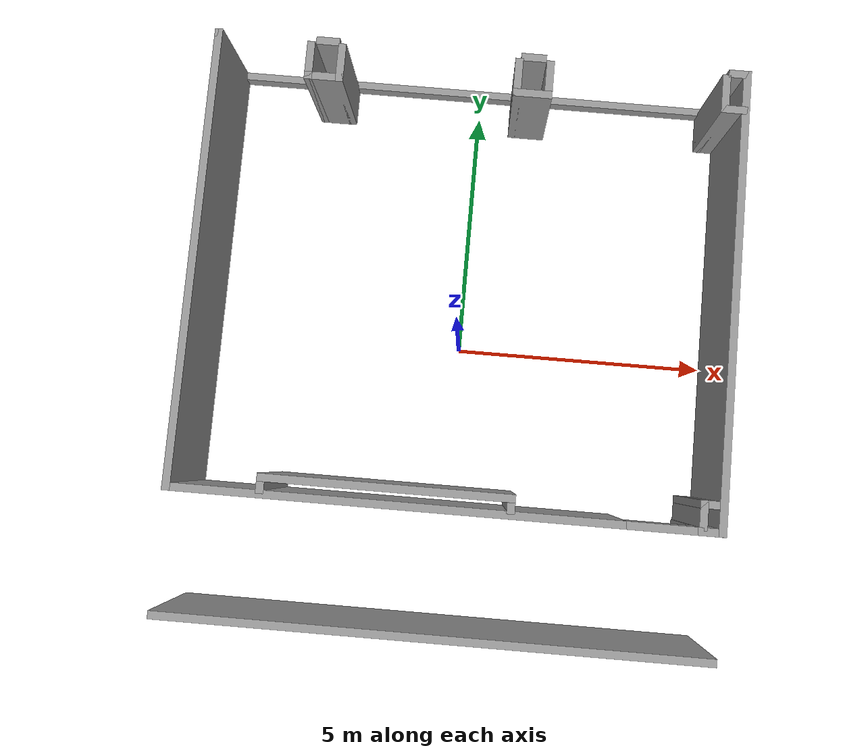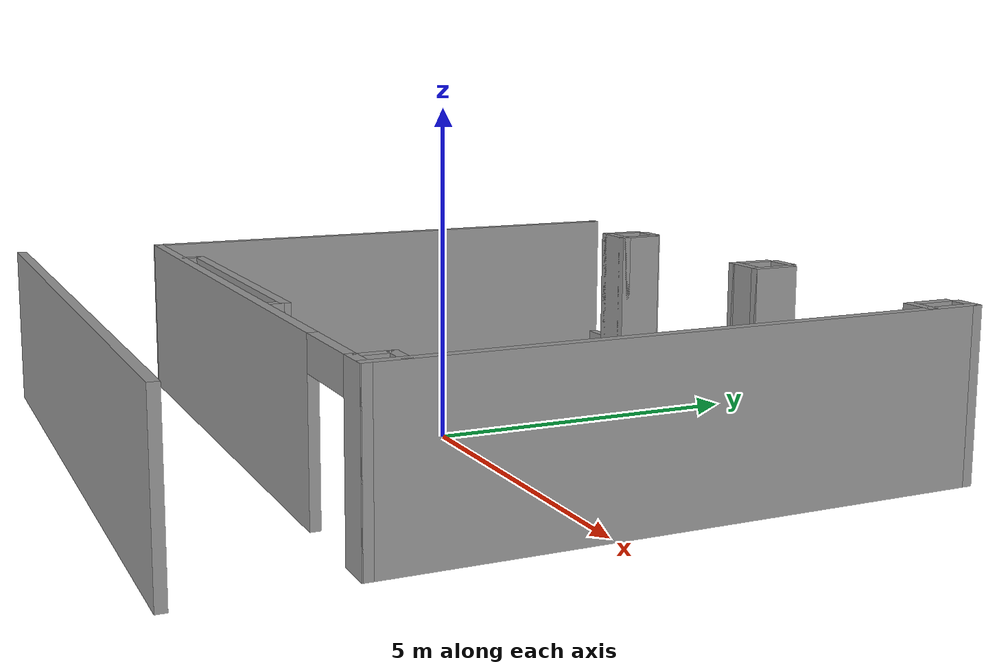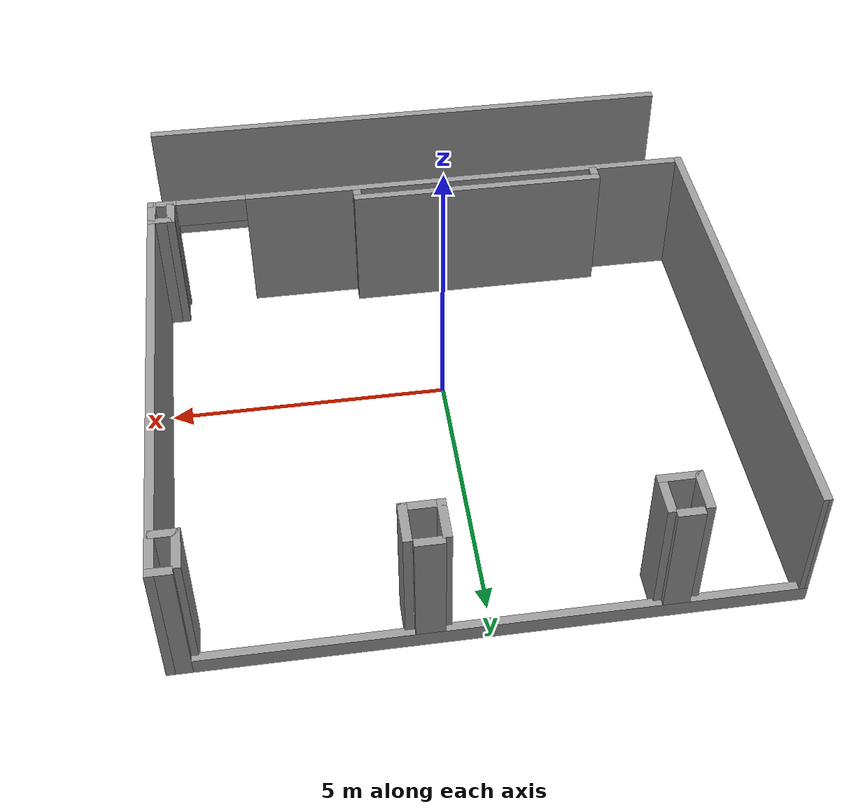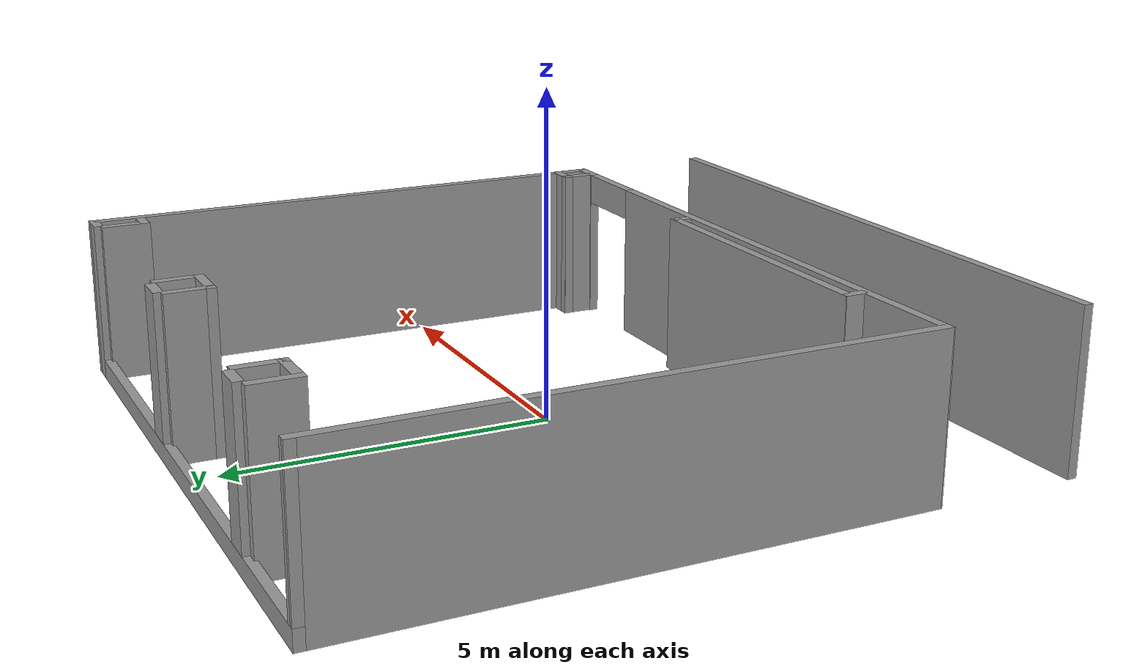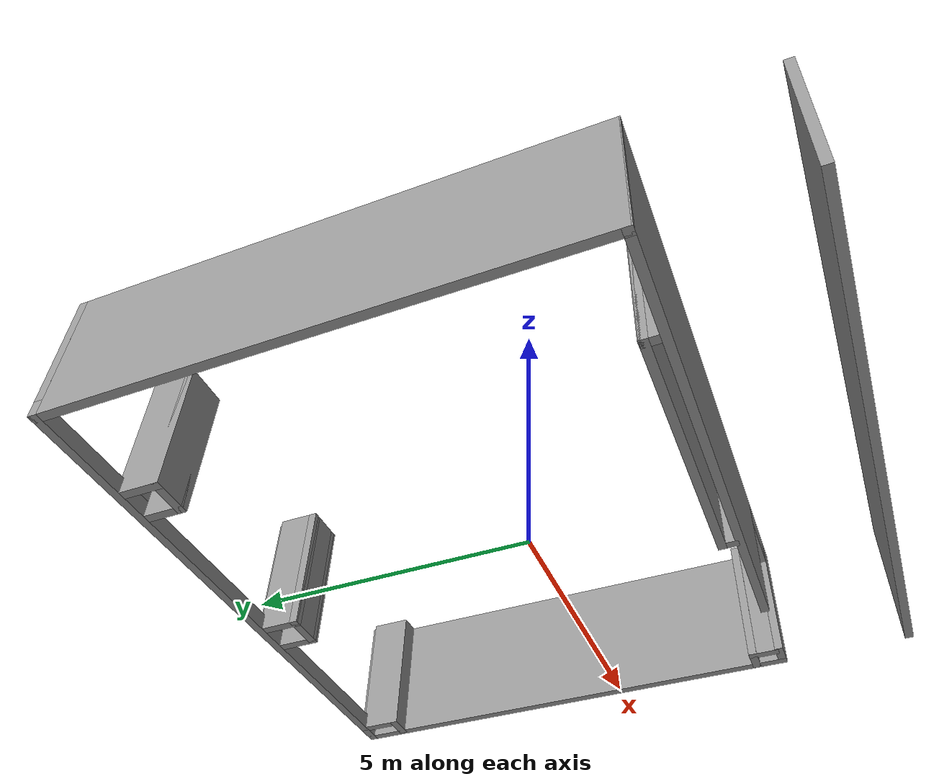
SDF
<?xml version='1.0'?>
<sdf version='1.7'>
  <model name='labmap'>
    <link name='Wall_21'>
      <pose>-5.08606 1.15108 0 0 0 -1.5708</pose>
      <self_collide>0</self_collide>
      <enable_wind>0</enable_wind>
      <kinematic>0</kinematic>
      <visual name='Wall_21_Visual'>
        <pose>0 0 1.25 0 -0 0</pose>
        <geometry>
          <box>
            <size>8.81401 0.15 2.5</size>
          </box>
        </geometry>
        <material>
          <script>
            <uri>file://media/materials/scripts/gazebo.material</uri>
            <name>Gazebo/Grey</name>
          </script>
          <ambient>1 1 1 1</ambient>
          <shader type='pixel'/>
        </material>
        <meta>
          <layer>0</layer>
        </meta>
        <transparency>0</transparency>
        <cast_shadows>1</cast_shadows>
      </visual>
      <collision name='Wall_21_Collision'>
        <laser_retro>0</laser_retro>
        <max_contacts>10</max_contacts>
        <pose>0 0 1.25 0 -0 0</pose>
        <geometry>
          <box>
            <size>8.81401 0.15 2.5</size>
          </box>
        </geometry>
        <surface>
          <friction>
            <ode>
              <mu>1</mu>
              <mu2>1</mu2>
              <fdir1>0 0 0</fdir1>
              <slip1>0</slip1>
              <slip2>0</slip2>
            </ode>
            <torsional>
              <coefficient>1</coefficient>
              <patch_radius>0</patch_radius>
              <surface_radius>0</surface_radius>
              <use_patch_radius>1</use_patch_radius>
              <ode>
                <slip>0</slip>
              </ode>
            </torsional>
          </friction>
          <bounce>
            <restitution_coefficient>0</restitution_coefficient>
            <threshold>1e+06</threshold>
          </bounce>
          <contact>
            <collide_without_contact>0</collide_without_contact>
            <collide_without_contact_bitmask>1</collide_without_contact_bitmask>
            <collide_bitmask>1</collide_bitmask>
            <ode>
              <soft_cfm>0</soft_cfm>
              <soft_erp>0.2</soft_erp>
              <kp>1e+13</kp>
              <kd>1</kd>
              <max_vel>0.01</max_vel>
              <min_depth>0</min_depth>
            </ode>
            <bullet>
              <split_impulse>1</split_impulse>
              <split_impulse_penetration_threshold>-0.01</split_impulse_penetration_threshold>
              <soft_cfm>0</soft_cfm>
              <soft_erp>0.2</soft_erp>
              <kp>1e+13</kp>
              <kd>1</kd>
            </bullet>
          </contact>
        </surface>
      </collision>
    </link>
    <link name='Wall_22'>
      <pose>5.8e-05 -3.182 0 0 0 -0.000211</pose>
      <self_collide>0</self_collide>
      <enable_wind>0</enable_wind>
      <kinematic>0</kinematic>
      <visual name='Wall_22_Visual_0'>
        <pose>-0.914908 0 1.25 0 -0 0</pose>
        <geometry>
          <box>
            <size>8.49243 0.15 2.5</size>
          </box>
        </geometry>
        <material>
          <script>
            <uri>file://media/materials/scripts/gazebo.material</uri>
            <name>Gazebo/Grey</name>
          </script>
          <ambient>1 1 1 1</ambient>
          <shader type='pixel'/>
        </material>
        <meta>
          <layer>0</layer>
        </meta>
        <transparency>0</transparency>
        <cast_shadows>1</cast_shadows>
      </visual>
      <visual name='Wall_22_Visual_1'>
        <pose>4.89621 0 1.25 0 -0 0</pose>
        <geometry>
          <box>
            <size>0.529817 0.15 2.5</size>
          </box>
        </geometry>
        <material>
          <script>
            <uri>file://media/materials/scripts/gazebo.material</uri>
            <name>Gazebo/Grey</name>
          </script>
          <ambient>1 1 1 1</ambient>
          <shader type='pixel'/>
        </material>
        <meta>
          <layer>0</layer>
        </meta>
        <transparency>0</transparency>
        <cast_shadows>1</cast_shadows>
      </visual>
      <visual name='Wall_22_Visual_2'>
        <pose>3.9813 0 2.25 0 -0 0</pose>
        <geometry>
          <box>
            <size>1.3 0.15 0.5</size>
          </box>
        </geometry>
        <material>
          <script>
            <uri>file://media/materials/scripts/gazebo.material</uri>
            <name>Gazebo/Grey</name>
          </script>
          <ambient>1 1 1 1</ambient>
          <shader type='pixel'/>
        </material>
        <meta>
          <layer>0</layer>
        </meta>
        <transparency>0</transparency>
        <cast_shadows>1</cast_shadows>
      </visual>
      <collision name='Wall_22_Collision_0'>
        <laser_retro>0</laser_retro>
        <max_contacts>10</max_contacts>
        <pose>-0.914908 0 1.25 0 -0 0</pose>
        <geometry>
          <box>
            <size>8.49243 0.15 2.5</size>
          </box>
        </geometry>
        <surface>
          <friction>
            <ode>
              <mu>1</mu>
              <mu2>1</mu2>
              <fdir1>0 0 0</fdir1>
              <slip1>0</slip1>
              <slip2>0</slip2>
            </ode>
            <torsional>
              <coefficient>1</coefficient>
              <patch_radius>0</patch_radius>
              <surface_radius>0</surface_radius>
              <use_patch_radius>1</use_patch_radius>
              <ode>
                <slip>0</slip>
              </ode>
            </torsional>
          </friction>
          <bounce>
            <restitution_coefficient>0</restitution_coefficient>
            <threshold>1e+06</threshold>
          </bounce>
          <contact>
            <collide_without_contact>0</collide_without_contact>
            <collide_without_contact_bitmask>1</collide_without_contact_bitmask>
            <collide_bitmask>1</collide_bitmask>
            <ode>
              <soft_cfm>0</soft_cfm>
              <soft_erp>0.2</soft_erp>
              <kp>1e+13</kp>
              <kd>1</kd>
              <max_vel>0.01</max_vel>
              <min_depth>0</min_depth>
            </ode>
            <bullet>
              <split_impulse>1</split_impulse>
              <split_impulse_penetration_threshold>-0.01</split_impulse_penetration_threshold>
              <soft_cfm>0</soft_cfm>
              <soft_erp>0.2</soft_erp>
              <kp>1e+13</kp>
              <kd>1</kd>
            </bullet>
          </contact>
        </surface>
      </collision>
      <collision name='Wall_22_Collision_2'>
        <laser_retro>0</laser_retro>
        <max_contacts>10</max_contacts>
        <pose>3.9813 0 2.25 0 -0 0</pose>
        <geometry>
          <box>
            <size>1.3 0.15 0.5</size>
          </box>
        </geometry>
        <surface>
          <friction>
            <ode>
              <mu>1</mu>
              <mu2>1</mu2>
              <fdir1>0 0 0</fdir1>
              <slip1>0</slip1>
              <slip2>0</slip2>
            </ode>
            <torsional>
              <coefficient>1</coefficient>
              <patch_radius>0</patch_radius>
              <surface_radius>0</surface_radius>
              <use_patch_radius>1</use_patch_radius>
              <ode>
                <slip>0</slip>
              </ode>
            </torsional>
          </friction>
          <bounce>
            <restitution_coefficient>0</restitution_coefficient>
            <threshold>1e+06</threshold>
          </bounce>
          <contact>
            <collide_without_contact>0</collide_without_contact>
            <collide_without_contact_bitmask>1</collide_without_contact_bitmask>
            <collide_bitmask>1</collide_bitmask>
            <ode>
              <soft_cfm>0</soft_cfm>
              <soft_erp>0.2</soft_erp>
              <kp>1e+13</kp>
              <kd>1</kd>
              <max_vel>0.01</max_vel>
              <min_depth>0</min_depth>
            </ode>
            <bullet>
              <split_impulse>1</split_impulse>
              <split_impulse_penetration_threshold>-0.01</split_impulse_penetration_threshold>
              <soft_cfm>0</soft_cfm>
              <soft_erp>0.2</soft_erp>
              <kp>1e+13</kp>
              <kd>1</kd>
            </bullet>
          </contact>
        </surface>
      </collision>
      <collision name='Wall_22_Collision_1'>
        <laser_retro>0</laser_retro>
        <max_contacts>10</max_contacts>
        <pose>4.89621 0 1.25 0 -0 0</pose>
        <geometry>
          <box>
            <size>0.529817 0.15 2.5</size>
          </box>
        </geometry>
        <surface>
          <friction>
            <ode>
              <mu>1</mu>
              <mu2>1</mu2>
              <fdir1>0 0 0</fdir1>
              <slip1>0</slip1>
              <slip2>0</slip2>
            </ode>
            <torsional>
              <coefficient>1</coefficient>
              <patch_radius>0</patch_radius>
              <surface_radius>0</surface_radius>
              <use_patch_radius>1</use_patch_radius>
              <ode>
                <slip>0</slip>
              </ode>
            </torsional>
          </friction>
          <bounce>
            <restitution_coefficient>0</restitution_coefficient>
            <threshold>1e+06</threshold>
          </bounce>
          <contact>
            <collide_without_contact>0</collide_without_contact>
            <collide_without_contact_bitmask>1</collide_without_contact_bitmask>
            <collide_bitmask>1</collide_bitmask>
            <ode>
              <soft_cfm>0</soft_cfm>
              <soft_erp>0.2</soft_erp>
              <kp>1e+13</kp>
              <kd>1</kd>
              <max_vel>0.01</max_vel>
              <min_depth>0</min_depth>
            </ode>
            <bullet>
              <split_impulse>1</split_impulse>
              <split_impulse_penetration_threshold>-0.01</split_impulse_penetration_threshold>
              <soft_cfm>0</soft_cfm>
              <soft_erp>0.2</soft_erp>
              <kp>1e+13</kp>
              <kd>1</kd>
            </bullet>
          </contact>
        </surface>
      </collision>
    </link>
    <link name='Wall_23'>
      <pose>5.08606 1.15108 0 0 -0 1.57082</pose>
      <self_collide>0</self_collide>
      <enable_wind>0</enable_wind>
      <kinematic>0</kinematic>
      <visual name='Wall_23_Visual'>
        <pose>0 0 1.25 0 -0 0</pose>
        <geometry>
          <box>
            <size>8.814 0.15 2.5</size>
          </box>
        </geometry>
        <material>
          <script>
            <uri>file://media/materials/scripts/gazebo.material</uri>
            <name>Gazebo/Grey</name>
          </script>
          <ambient>1 1 1 1</ambient>
          <shader type='pixel'/>
        </material>
        <meta>
          <layer>0</layer>
        </meta>
        <transparency>0</transparency>
        <cast_shadows>1</cast_shadows>
      </visual>
      <collision name='Wall_23_Collision'>
        <laser_retro>0</laser_retro>
        <max_contacts>10</max_contacts>
        <pose>0 0 1.25 0 -0 0</pose>
        <geometry>
          <box>
            <size>8.814 0.15 2.5</size>
          </box>
        </geometry>
        <surface>
          <friction>
            <ode>
              <mu>1</mu>
              <mu2>1</mu2>
              <fdir1>0 0 0</fdir1>
              <slip1>0</slip1>
              <slip2>0</slip2>
            </ode>
            <torsional>
              <coefficient>1</coefficient>
              <patch_radius>0</patch_radius>
              <surface_radius>0</surface_radius>
              <use_patch_radius>1</use_patch_radius>
              <ode>
                <slip>0</slip>
              </ode>
            </torsional>
          </friction>
          <bounce>
            <restitution_coefficient>0</restitution_coefficient>
            <threshold>1e+06</threshold>
          </bounce>
          <contact>
            <collide_without_contact>0</collide_without_contact>
            <collide_without_contact_bitmask>1</collide_without_contact_bitmask>
            <collide_bitmask>1</collide_bitmask>
            <ode>
              <soft_cfm>0</soft_cfm>
              <soft_erp>0.2</soft_erp>
              <kp>1e+13</kp>
              <kd>1</kd>
              <max_vel>0.01</max_vel>
              <min_depth>0</min_depth>
            </ode>
            <bullet>
              <split_impulse>1</split_impulse>
              <split_impulse_penetration_threshold>-0.01</split_impulse_penetration_threshold>
              <soft_cfm>0</soft_cfm>
              <soft_erp>0.2</soft_erp>
              <kp>1e+13</kp>
              <kd>1</kd>
            </bullet>
          </contact>
        </surface>
      </collision>
    </link>
    <link name='Wall_24'>
      <pose>-6.3e-05 5.48308 0 0 -0 3.14159</pose>
      <self_collide>0</self_collide>
      <enable_wind>0</enable_wind>
      <kinematic>0</kinematic>
      <visual name='Wall_24_Visual_0'>
        <pose>-4.94843 0 1.25 0 -0 0</pose>
        <geometry>
          <box>
            <size>0.425403 0.15 2.5</size>
          </box>
        </geometry>
        <material>
          <script>
            <uri>file://media/materials/scripts/gazebo.material</uri>
            <name>Gazebo/Grey</name>
          </script>
          <ambient>1 1 1 1</ambient>
          <shader type='pixel'/>
        </material>
        <meta>
          <layer>0</layer>
        </meta>
        <transparency>0</transparency>
        <cast_shadows>1</cast_shadows>
      </visual>
      <visual name='Wall_24_Visual_1'>
        <pose>0.212701 0 0.15 0 -0 0</pose>
        <geometry>
          <box>
            <size>9.89686 0.15 0.3</size>
          </box>
        </geometry>
        <material>
          <script>
            <uri>file://media/materials/scripts/gazebo.material</uri>
            <name>Gazebo/Grey</name>
          </script>
          <ambient>1 1 1 1</ambient>
          <shader type='pixel'/>
        </material>
        <meta>
          <layer>0</layer>
        </meta>
        <transparency>0</transparency>
        <cast_shadows>1</cast_shadows>
      </visual>
      <visual name='Wall_24_Visual_2'>
        <pose>-0.993384 0 1.4 0 -0 0</pose>
        <geometry>
          <box>
            <size>0.484693 0.15 2.2</size>
          </box>
        </geometry>
        <material>
          <script>
            <uri>file://media/materials/scripts/gazebo.material</uri>
            <name>Gazebo/Grey</name>
          </script>
          <ambient>1 1 1 1</ambient>
          <shader type='pixel'/>
        </material>
        <meta>
          <layer>0</layer>
        </meta>
        <transparency>0</transparency>
        <cast_shadows>1</cast_shadows>
      </visual>
      <visual name='Wall_24_Visual_3'>
        <pose>2.97383 0 1.4 0 -0 0</pose>
        <geometry>
          <box>
            <size>0.449737 0.15 2.2</size>
          </box>
        </geometry>
        <material>
          <script>
            <uri>file://media/materials/scripts/gazebo.material</uri>
            <name>Gazebo/Grey</name>
          </script>
          <ambient>1 1 1 1</ambient>
          <shader type='pixel'/>
        </material>
        <meta>
          <layer>0</layer>
        </meta>
        <transparency>0</transparency>
        <cast_shadows>1</cast_shadows>
      </visual>
      <visual name='Wall_24_Visual_4'>
        <pose>5.12992 0 1.4 0 -0 0</pose>
        <geometry>
          <box>
            <size>0.062433 0.15 2.2</size>
          </box>
        </geometry>
        <material>
          <script>
            <uri>file://media/materials/scripts/gazebo.material</uri>
            <name>Gazebo/Grey</name>
          </script>
          <ambient>1 1 1 1</ambient>
          <shader type='pixel'/>
        </material>
        <meta>
          <layer>0</layer>
        </meta>
        <transparency>0</transparency>
        <cast_shadows>1</cast_shadows>
      </visual>
      <collision name='Wall_24_Collision_0'>
        <laser_retro>0</laser_retro>
        <max_contacts>10</max_contacts>
        <pose>-4.94843 0 1.25 0 -0 0</pose>
        <geometry>
          <box>
            <size>0.425403 0.15 2.5</size>
          </box>
        </geometry>
        <surface>
          <friction>
            <ode>
              <mu>1</mu>
              <mu2>1</mu2>
              <fdir1>0 0 0</fdir1>
              <slip1>0</slip1>
              <slip2>0</slip2>
            </ode>
            <torsional>
              <coefficient>1</coefficient>
              <patch_radius>0</patch_radius>
              <surface_radius>0</surface_radius>
              <use_patch_radius>1</use_patch_radius>
              <ode>
                <slip>0</slip>
              </ode>
            </torsional>
          </friction>
          <bounce>
            <restitution_coefficient>0</restitution_coefficient>
            <threshold>1e+06</threshold>
          </bounce>
          <contact>
            <collide_without_contact>0</collide_without_contact>
            <collide_without_contact_bitmask>1</collide_without_contact_bitmask>
            <collide_bitmask>1</collide_bitmask>
            <ode>
              <soft_cfm>0</soft_cfm>
              <soft_erp>0.2</soft_erp>
              <kp>1e+13</kp>
              <kd>1</kd>
              <max_vel>0.01</max_vel>
              <min_depth>0</min_depth>
            </ode>
            <bullet>
              <split_impulse>1</split_impulse>
              <split_impulse_penetration_threshold>-0.01</split_impulse_penetration_threshold>
              <soft_cfm>0</soft_cfm>
              <soft_erp>0.2</soft_erp>
              <kp>1e+13</kp>
              <kd>1</kd>
            </bullet>
          </contact>
        </surface>
      </collision>
      <collision name='Wall_24_Collision_1'>
        <laser_retro>0</laser_retro>
        <max_contacts>10</max_contacts>
        <pose>0.212701 0 0.15 0 -0 0</pose>
        <geometry>
          <box>
            <size>9.89686 0.15 0.3</size>
          </box>
        </geometry>
        <surface>
          <friction>
            <ode>
              <mu>1</mu>
              <mu2>1</mu2>
              <fdir1>0 0 0</fdir1>
              <slip1>0</slip1>
              <slip2>0</slip2>
            </ode>
            <torsional>
              <coefficient>1</coefficient>
              <patch_radius>0</patch_radius>
              <surface_radius>0</surface_radius>
              <use_patch_radius>1</use_patch_radius>
              <ode>
                <slip>0</slip>
              </ode>
            </torsional>
          </friction>
          <bounce>
            <restitution_coefficient>0</restitution_coefficient>
            <threshold>1e+06</threshold>
          </bounce>
          <contact>
            <collide_without_contact>0</collide_without_contact>
            <collide_without_contact_bitmask>1</collide_without_contact_bitmask>
            <collide_bitmask>1</collide_bitmask>
            <ode>
              <soft_cfm>0</soft_cfm>
              <soft_erp>0.2</soft_erp>
              <kp>1e+13</kp>
              <kd>1</kd>
              <max_vel>0.01</max_vel>
              <min_depth>0</min_depth>
            </ode>
            <bullet>
              <split_impulse>1</split_impulse>
              <split_impulse_penetration_threshold>-0.01</split_impulse_penetration_threshold>
              <soft_cfm>0</soft_cfm>
              <soft_erp>0.2</soft_erp>
              <kp>1e+13</kp>
              <kd>1</kd>
            </bullet>
          </contact>
        </surface>
      </collision>
      <collision name='Wall_24_Collision_2'>
        <laser_retro>0</laser_retro>
        <max_contacts>10</max_contacts>
        <pose>-0.993384 0 1.4 0 -0 0</pose>
        <geometry>
          <box>
            <size>0.484693 0.15 2.2</size>
          </box>
        </geometry>
        <surface>
          <friction>
            <ode>
              <mu>1</mu>
              <mu2>1</mu2>
              <fdir1>0 0 0</fdir1>
              <slip1>0</slip1>
              <slip2>0</slip2>
            </ode>
            <torsional>
              <coefficient>1</coefficient>
              <patch_radius>0</patch_radius>
              <surface_radius>0</surface_radius>
              <use_patch_radius>1</use_patch_radius>
              <ode>
                <slip>0</slip>
              </ode>
            </torsional>
          </friction>
          <bounce>
            <restitution_coefficient>0</restitution_coefficient>
            <threshold>1e+06</threshold>
          </bounce>
          <contact>
            <collide_without_contact>0</collide_without_contact>
            <collide_without_contact_bitmask>1</collide_without_contact_bitmask>
            <collide_bitmask>1</collide_bitmask>
            <ode>
              <soft_cfm>0</soft_cfm>
              <soft_erp>0.2</soft_erp>
              <kp>1e+13</kp>
              <kd>1</kd>
              <max_vel>0.01</max_vel>
              <min_depth>0</min_depth>
            </ode>
            <bullet>
              <split_impulse>1</split_impulse>
              <split_impulse_penetration_threshold>-0.01</split_impulse_penetration_threshold>
              <soft_cfm>0</soft_cfm>
              <soft_erp>0.2</soft_erp>
              <kp>1e+13</kp>
              <kd>1</kd>
            </bullet>
          </contact>
        </surface>
      </collision>
      <collision name='Wall_24_Collision_3'>
        <laser_retro>0</laser_retro>
        <max_contacts>10</max_contacts>
        <pose>2.97383 0 1.4 0 -0 0</pose>
        <geometry>
          <box>
            <size>0.449737 0.15 2.2</size>
          </box>
        </geometry>
        <surface>
          <friction>
            <ode>
              <mu>1</mu>
              <mu2>1</mu2>
              <fdir1>0 0 0</fdir1>
              <slip1>0</slip1>
              <slip2>0</slip2>
            </ode>
            <torsional>
              <coefficient>1</coefficient>
              <patch_radius>0</patch_radius>
              <surface_radius>0</surface_radius>
              <use_patch_radius>1</use_patch_radius>
              <ode>
                <slip>0</slip>
              </ode>
            </torsional>
          </friction>
          <bounce>
            <restitution_coefficient>0</restitution_coefficient>
            <threshold>1e+06</threshold>
          </bounce>
          <contact>
            <collide_without_contact>0</collide_without_contact>
            <collide_without_contact_bitmask>1</collide_without_contact_bitmask>
            <collide_bitmask>1</collide_bitmask>
            <ode>
              <soft_cfm>0</soft_cfm>
              <soft_erp>0.2</soft_erp>
              <kp>1e+13</kp>
              <kd>1</kd>
              <max_vel>0.01</max_vel>
              <min_depth>0</min_depth>
            </ode>
            <bullet>
              <split_impulse>1</split_impulse>
              <split_impulse_penetration_threshold>-0.01</split_impulse_penetration_threshold>
              <soft_cfm>0</soft_cfm>
              <soft_erp>0.2</soft_erp>
              <kp>1e+13</kp>
              <kd>1</kd>
            </bullet>
          </contact>
        </surface>
      </collision>
      <collision name='Wall_24_Collision_4'>
        <laser_retro>0</laser_retro>
        <max_contacts>10</max_contacts>
        <pose>5.12992 0 1.4 0 -0 0</pose>
        <geometry>
          <box>
            <size>0.062433 0.15 2.2</size>
          </box>
        </geometry>
        <surface>
          <friction>
            <ode>
              <mu>1</mu>
              <mu2>1</mu2>
              <fdir1>0 0 0</fdir1>
              <slip1>0</slip1>
              <slip2>0</slip2>
            </ode>
            <torsional>
              <coefficient>1</coefficient>
              <patch_radius>0</patch_radius>
              <surface_radius>0</surface_radius>
              <use_patch_radius>1</use_patch_radius>
              <ode>
                <slip>0</slip>
              </ode>
            </torsional>
          </friction>
          <bounce>
            <restitution_coefficient>0</restitution_coefficient>
            <threshold>1e+06</threshold>
          </bounce>
          <contact>
            <collide_without_contact>0</collide_without_contact>
            <collide_without_contact_bitmask>1</collide_without_contact_bitmask>
            <collide_bitmask>1</collide_bitmask>
            <ode>
              <soft_cfm>0</soft_cfm>
              <soft_erp>0.2</soft_erp>
              <kp>1e+13</kp>
              <kd>1</kd>
              <max_vel>0.01</max_vel>
              <min_depth>0</min_depth>
            </ode>
            <bullet>
              <split_impulse>1</split_impulse>
              <split_impulse_penetration_threshold>-0.01</split_impulse_penetration_threshold>
              <soft_cfm>0</soft_cfm>
              <soft_erp>0.2</soft_erp>
              <kp>1e+13</kp>
              <kd>1</kd>
            </bullet>
          </contact>
        </surface>
      </collision>
    </link>
    <link name='Wall_26'>
      <pose>-0.018431 -5.48308 0 0 -0 0</pose>
      <self_collide>0</self_collide>
      <enable_wind>0</enable_wind>
      <kinematic>0</kinematic>
      <visual name='Wall_26_Visual'>
        <pose>0 0 1.25 0 -0 0</pose>
        <geometry>
          <box>
            <size>10.25 0.15 2.5</size>
          </box>
        </geometry>
        <material>
          <script>
            <uri>file://media/materials/scripts/gazebo.material</uri>
            <name>Gazebo/Grey</name>
          </script>
          <ambient>1 1 1 1</ambient>
          <shader type='pixel'/>
        </material>
        <meta>
          <layer>0</layer>
        </meta>
        <transparency>0</transparency>
        <cast_shadows>1</cast_shadows>
      </visual>
      <collision name='Wall_26_Collision'>
        <laser_retro>0</laser_retro>
        <max_contacts>10</max_contacts>
        <pose>0 0 1.25 0 -0 0</pose>
        <geometry>
          <box>
            <size>10.25 0.15 2.5</size>
          </box>
        </geometry>
        <surface>
          <friction>
            <ode>
              <mu>1</mu>
              <mu2>1</mu2>
              <fdir1>0 0 0</fdir1>
              <slip1>0</slip1>
              <slip2>0</slip2>
            </ode>
            <torsional>
              <coefficient>1</coefficient>
              <patch_radius>0</patch_radius>
              <surface_radius>0</surface_radius>
              <use_patch_radius>1</use_patch_radius>
              <ode>
                <slip>0</slip>
              </ode>
            </torsional>
          </friction>
          <bounce>
            <restitution_coefficient>0</restitution_coefficient>
            <threshold>1e+06</threshold>
          </bounce>
          <contact>
            <collide_without_contact>0</collide_without_contact>
            <collide_without_contact_bitmask>1</collide_without_contact_bitmask>
            <collide_bitmask>1</collide_bitmask>
            <ode>
              <soft_cfm>0</soft_cfm>
              <soft_erp>0.2</soft_erp>
              <kp>1e+13</kp>
              <kd>1</kd>
              <max_vel>0.01</max_vel>
              <min_depth>0</min_depth>
            </ode>
            <bullet>
              <split_impulse>1</split_impulse>
              <split_impulse_penetration_threshold>-0.01</split_impulse_penetration_threshold>
              <soft_cfm>0</soft_cfm>
              <soft_erp>0.2</soft_erp>
              <kp>1e+13</kp>
              <kd>1</kd>
            </bullet>
          </contact>
        </surface>
      </collision>
    </link>
    <link name='Wall_28'>
      <pose>-3.37506 -2.99417 0 0 -0 1.5708</pose>
      <self_collide>0</self_collide>
      <enable_wind>0</enable_wind>
      <kinematic>0</kinematic>
      <visual name='Wall_28_Visual'>
        <pose>0 0 1.25 0 -0 0</pose>
        <geometry>
          <box>
            <size>0.3575 0.15 2.5</size>
          </box>
        </geometry>
        <material>
          <script>
            <uri>file://media/materials/scripts/gazebo.material</uri>
            <name>Gazebo/Grey</name>
          </script>
          <ambient>1 1 1 1</ambient>
          <shader type='pixel'/>
        </material>
        <meta>
          <layer>0</layer>
        </meta>
        <transparency>0</transparency>
        <cast_shadows>1</cast_shadows>
      </visual>
      <collision name='Wall_28_Collision'>
        <laser_retro>0</laser_retro>
        <max_contacts>10</max_contacts>
        <pose>0 0 1.25 0 -0 0</pose>
        <geometry>
          <box>
            <size>0.3575 0.15 2.5</size>
          </box>
        </geometry>
        <surface>
          <friction>
            <ode>
              <mu>1</mu>
              <mu2>1</mu2>
              <fdir1>0 0 0</fdir1>
              <slip1>0</slip1>
              <slip2>0</slip2>
            </ode>
            <torsional>
              <coefficient>1</coefficient>
              <patch_radius>0</patch_radius>
              <surface_radius>0</surface_radius>
              <use_patch_radius>1</use_patch_radius>
              <ode>
                <slip>0</slip>
              </ode>
            </torsional>
          </friction>
          <bounce>
            <restitution_coefficient>0</restitution_coefficient>
            <threshold>1e+06</threshold>
          </bounce>
          <contact>
            <collide_without_contact>0</collide_without_contact>
            <collide_without_contact_bitmask>1</collide_without_contact_bitmask>
            <collide_bitmask>1</collide_bitmask>
            <ode>
              <soft_cfm>0</soft_cfm>
              <soft_erp>0.2</soft_erp>
              <kp>1e+13</kp>
              <kd>1</kd>
              <max_vel>0.01</max_vel>
              <min_depth>0</min_depth>
            </ode>
            <bullet>
              <split_impulse>1</split_impulse>
              <split_impulse_penetration_threshold>-0.01</split_impulse_penetration_threshold>
              <soft_cfm>0</soft_cfm>
              <soft_erp>0.2</soft_erp>
              <kp>1e+13</kp>
              <kd>1</kd>
            </bullet>
          </contact>
        </surface>
      </collision>
    </link>
    <link name='Wall_29'>
      <pose>-1.07756 -2.87892 0 0 -0 0</pose>
      <self_collide>0</self_collide>
      <enable_wind>0</enable_wind>
      <kinematic>0</kinematic>
      <visual name='Wall_29_Visual'>
        <pose>0 0 1.25 0 -0 0</pose>
        <geometry>
          <box>
            <size>4.745 0.15 2.5</size>
          </box>
        </geometry>
        <material>
          <script>
            <uri>file://media/materials/scripts/gazebo.material</uri>
            <name>Gazebo/Grey</name>
          </script>
          <ambient>1 1 1 1</ambient>
          <shader type='pixel'/>
        </material>
        <meta>
          <layer>0</layer>
        </meta>
        <transparency>0</transparency>
        <cast_shadows>1</cast_shadows>
      </visual>
      <collision name='Wall_29_Collision'>
        <laser_retro>0</laser_retro>
        <max_contacts>10</max_contacts>
        <pose>0 0 1.25 0 -0 0</pose>
        <geometry>
          <box>
            <size>4.745 0.15 2.5</size>
          </box>
        </geometry>
        <surface>
          <friction>
            <ode>
              <mu>1</mu>
              <mu2>1</mu2>
              <fdir1>0 0 0</fdir1>
              <slip1>0</slip1>
              <slip2>0</slip2>
            </ode>
            <torsional>
              <coefficient>1</coefficient>
              <patch_radius>0</patch_radius>
              <surface_radius>0</surface_radius>
              <use_patch_radius>1</use_patch_radius>
              <ode>
                <slip>0</slip>
              </ode>
            </torsional>
          </friction>
          <bounce>
            <restitution_coefficient>0</restitution_coefficient>
            <threshold>1e+06</threshold>
          </bounce>
          <contact>
            <collide_without_contact>0</collide_without_contact>
            <collide_without_contact_bitmask>1</collide_without_contact_bitmask>
            <collide_bitmask>1</collide_bitmask>
            <ode>
              <soft_cfm>0</soft_cfm>
              <soft_erp>0.2</soft_erp>
              <kp>1e+13</kp>
              <kd>1</kd>
              <max_vel>0.01</max_vel>
              <min_depth>0</min_depth>
            </ode>
            <bullet>
              <split_impulse>1</split_impulse>
              <split_impulse_penetration_threshold>-0.01</split_impulse_penetration_threshold>
              <soft_cfm>0</soft_cfm>
              <soft_erp>0.2</soft_erp>
              <kp>1e+13</kp>
              <kd>1</kd>
            </bullet>
          </contact>
        </surface>
      </collision>
    </link>
    <link name='Wall_30'>
      <pose>1.22006 -2.98849 0 0 0 -1.56951</pose>
      <self_collide>0</self_collide>
      <enable_wind>0</enable_wind>
      <kinematic>0</kinematic>
      <visual name='Wall_30_Visual'>
        <pose>0 0 1.25 0 -0 0</pose>
        <geometry>
          <box>
            <size>0.346126 0.15 2.5</size>
          </box>
        </geometry>
        <material>
          <script>
            <uri>file://media/materials/scripts/gazebo.material</uri>
            <name>Gazebo/Grey</name>
          </script>
          <ambient>1 1 1 1</ambient>
          <shader type='pixel'/>
        </material>
        <meta>
          <layer>0</layer>
        </meta>
        <transparency>0</transparency>
        <cast_shadows>1</cast_shadows>
      </visual>
      <collision name='Wall_30_Collision'>
        <laser_retro>0</laser_retro>
        <max_contacts>10</max_contacts>
        <pose>0 0 1.25 0 -0 0</pose>
        <geometry>
          <box>
            <size>0.346126 0.15 2.5</size>
          </box>
        </geometry>
        <surface>
          <friction>
            <ode>
              <mu>1</mu>
              <mu2>1</mu2>
              <fdir1>0 0 0</fdir1>
              <slip1>0</slip1>
              <slip2>0</slip2>
            </ode>
            <torsional>
              <coefficient>1</coefficient>
              <patch_radius>0</patch_radius>
              <surface_radius>0</surface_radius>
              <use_patch_radius>1</use_patch_radius>
              <ode>
                <slip>0</slip>
              </ode>
            </torsional>
          </friction>
          <bounce>
            <restitution_coefficient>0</restitution_coefficient>
            <threshold>1e+06</threshold>
          </bounce>
          <contact>
            <collide_without_contact>0</collide_without_contact>
            <collide_without_contact_bitmask>1</collide_without_contact_bitmask>
            <collide_bitmask>1</collide_bitmask>
            <ode>
              <soft_cfm>0</soft_cfm>
              <soft_erp>0.2</soft_erp>
              <kp>1e+13</kp>
              <kd>1</kd>
              <max_vel>0.01</max_vel>
              <min_depth>0</min_depth>
            </ode>
            <bullet>
              <split_impulse>1</split_impulse>
              <split_impulse_penetration_threshold>-0.01</split_impulse_penetration_threshold>
              <soft_cfm>0</soft_cfm>
              <soft_erp>0.2</soft_erp>
              <kp>1e+13</kp>
              <kd>1</kd>
            </bullet>
          </contact>
        </surface>
      </collision>
    </link>
    <link name='Wall_32'>
      <pose>-3.29185 5.08001 0 0 0 -1.5708</pose>
      <self_collide>0</self_collide>
      <enable_wind>0</enable_wind>
      <kinematic>0</kinematic>
      <visual name='Wall_32_Visual'>
        <pose>0 0 1.25 0 -0 0</pose>
        <geometry>
          <box>
            <size>0.75 0.15 2.5</size>
          </box>
        </geometry>
        <material>
          <script>
            <uri>file://media/materials/scripts/gazebo.material</uri>
            <name>Gazebo/Grey</name>
          </script>
          <ambient>1 1 1 1</ambient>
          <shader type='pixel'/>
        </material>
        <meta>
          <layer>0</layer>
        </meta>
        <transparency>0</transparency>
        <cast_shadows>1</cast_shadows>
      </visual>
      <collision name='Wall_32_Collision'>
        <laser_retro>0</laser_retro>
        <max_contacts>10</max_contacts>
        <pose>0 0 1.25 0 -0 0</pose>
        <geometry>
          <box>
            <size>0.75 0.15 2.5</size>
          </box>
        </geometry>
        <surface>
          <friction>
            <ode>
              <mu>1</mu>
              <mu2>1</mu2>
              <fdir1>0 0 0</fdir1>
              <slip1>0</slip1>
              <slip2>0</slip2>
            </ode>
            <torsional>
              <coefficient>1</coefficient>
              <patch_radius>0</patch_radius>
              <surface_radius>0</surface_radius>
              <use_patch_radius>1</use_patch_radius>
              <ode>
                <slip>0</slip>
              </ode>
            </torsional>
          </friction>
          <bounce>
            <restitution_coefficient>0</restitution_coefficient>
            <threshold>1e+06</threshold>
          </bounce>
          <contact>
            <collide_without_contact>0</collide_without_contact>
            <collide_without_contact_bitmask>1</collide_without_contact_bitmask>
            <collide_bitmask>1</collide_bitmask>
            <ode>
              <soft_cfm>0</soft_cfm>
              <soft_erp>0.2</soft_erp>
              <kp>1e+13</kp>
              <kd>1</kd>
              <max_vel>0.01</max_vel>
              <min_depth>0</min_depth>
            </ode>
            <bullet>
              <split_impulse>1</split_impulse>
              <split_impulse_penetration_threshold>-0.01</split_impulse_penetration_threshold>
              <soft_cfm>0</soft_cfm>
              <soft_erp>0.2</soft_erp>
              <kp>1e+13</kp>
              <kd>1</kd>
            </bullet>
          </contact>
        </surface>
      </collision>
    </link>
    <link name='Wall_33'>
      <pose>-2.99185 4.78001 0 0 -0 0</pose>
      <self_collide>0</self_collide>
      <enable_wind>0</enable_wind>
      <kinematic>0</kinematic>
      <visual name='Wall_33_Visual'>
        <pose>0 0 1.25 0 -0 0</pose>
        <geometry>
          <box>
            <size>0.75 0.15 2.5</size>
          </box>
        </geometry>
        <material>
          <script>
            <uri>file://media/materials/scripts/gazebo.material</uri>
            <name>Gazebo/Grey</name>
          </script>
          <ambient>1 1 1 1</ambient>
          <shader type='pixel'/>
        </material>
        <meta>
          <layer>0</layer>
        </meta>
        <transparency>0</transparency>
        <cast_shadows>1</cast_shadows>
      </visual>
      <collision name='Wall_33_Collision'>
        <laser_retro>0</laser_retro>
        <max_contacts>10</max_contacts>
        <pose>0 0 1.25 0 -0 0</pose>
        <geometry>
          <box>
            <size>0.75 0.15 2.5</size>
          </box>
        </geometry>
        <surface>
          <friction>
            <ode>
              <mu>1</mu>
              <mu2>1</mu2>
              <fdir1>0 0 0</fdir1>
              <slip1>0</slip1>
              <slip2>0</slip2>
            </ode>
            <torsional>
              <coefficient>1</coefficient>
              <patch_radius>0</patch_radius>
              <surface_radius>0</surface_radius>
              <use_patch_radius>1</use_patch_radius>
              <ode>
                <slip>0</slip>
              </ode>
            </torsional>
          </friction>
          <bounce>
            <restitution_coefficient>0</restitution_coefficient>
            <threshold>1e+06</threshold>
          </bounce>
          <contact>
            <collide_without_contact>0</collide_without_contact>
            <collide_without_contact_bitmask>1</collide_without_contact_bitmask>
            <collide_bitmask>1</collide_bitmask>
            <ode>
              <soft_cfm>0</soft_cfm>
              <soft_erp>0.2</soft_erp>
              <kp>1e+13</kp>
              <kd>1</kd>
              <max_vel>0.01</max_vel>
              <min_depth>0</min_depth>
            </ode>
            <bullet>
              <split_impulse>1</split_impulse>
              <split_impulse_penetration_threshold>-0.01</split_impulse_penetration_threshold>
              <soft_cfm>0</soft_cfm>
              <soft_erp>0.2</soft_erp>
              <kp>1e+13</kp>
              <kd>1</kd>
            </bullet>
          </contact>
        </surface>
      </collision>
    </link>
    <link name='Wall_34'>
      <pose>-2.69185 5.08001 0 0 -0 1.5708</pose>
      <self_collide>0</self_collide>
      <enable_wind>0</enable_wind>
      <kinematic>0</kinematic>
      <visual name='Wall_34_Visual'>
        <pose>0 0 1.25 0 -0 0</pose>
        <geometry>
          <box>
            <size>0.75 0.15 2.5</size>
          </box>
        </geometry>
        <material>
          <script>
            <uri>file://media/materials/scripts/gazebo.material</uri>
            <name>Gazebo/Grey</name>
          </script>
          <ambient>1 1 1 1</ambient>
          <shader type='pixel'/>
        </material>
        <meta>
          <layer>0</layer>
        </meta>
        <transparency>0</transparency>
        <cast_shadows>1</cast_shadows>
      </visual>
      <collision name='Wall_34_Collision'>
        <laser_retro>0</laser_retro>
        <max_contacts>10</max_contacts>
        <pose>0 0 1.25 0 -0 0</pose>
        <geometry>
          <box>
            <size>0.75 0.15 2.5</size>
          </box>
        </geometry>
        <surface>
          <friction>
            <ode>
              <mu>1</mu>
              <mu2>1</mu2>
              <fdir1>0 0 0</fdir1>
              <slip1>0</slip1>
              <slip2>0</slip2>
            </ode>
            <torsional>
              <coefficient>1</coefficient>
              <patch_radius>0</patch_radius>
              <surface_radius>0</surface_radius>
              <use_patch_radius>1</use_patch_radius>
              <ode>
                <slip>0</slip>
              </ode>
            </torsional>
          </friction>
          <bounce>
            <restitution_coefficient>0</restitution_coefficient>
            <threshold>1e+06</threshold>
          </bounce>
          <contact>
            <collide_without_contact>0</collide_without_contact>
            <collide_without_contact_bitmask>1</collide_without_contact_bitmask>
            <collide_bitmask>1</collide_bitmask>
            <ode>
              <soft_cfm>0</soft_cfm>
              <soft_erp>0.2</soft_erp>
              <kp>1e+13</kp>
              <kd>1</kd>
              <max_vel>0.01</max_vel>
              <min_depth>0</min_depth>
            </ode>
            <bullet>
              <split_impulse>1</split_impulse>
              <split_impulse_penetration_threshold>-0.01</split_impulse_penetration_threshold>
              <soft_cfm>0</soft_cfm>
              <soft_erp>0.2</soft_erp>
              <kp>1e+13</kp>
              <kd>1</kd>
            </bullet>
          </contact>
        </surface>
      </collision>
    </link>
    <link name='Wall_36'>
      <pose>0.716143 5.07429 0 0 0 -1.5708</pose>
      <self_collide>0</self_collide>
      <enable_wind>0</enable_wind>
      <kinematic>0</kinematic>
      <visual name='Wall_36_Visual'>
        <pose>0 0 1.25 0 -0 0</pose>
        <geometry>
          <box>
            <size>0.75 0.15 2.5</size>
          </box>
        </geometry>
        <material>
          <script>
            <uri>file://media/materials/scripts/gazebo.material</uri>
            <name>Gazebo/Grey</name>
          </script>
          <ambient>1 1 1 1</ambient>
          <shader type='pixel'/>
        </material>
        <meta>
          <layer>0</layer>
        </meta>
        <transparency>0</transparency>
        <cast_shadows>1</cast_shadows>
      </visual>
      <collision name='Wall_36_Collision'>
        <laser_retro>0</laser_retro>
        <max_contacts>10</max_contacts>
        <pose>0 0 1.25 0 -0 0</pose>
        <geometry>
          <box>
            <size>0.75 0.15 2.5</size>
          </box>
        </geometry>
        <surface>
          <friction>
            <ode>
              <mu>1</mu>
              <mu2>1</mu2>
              <fdir1>0 0 0</fdir1>
              <slip1>0</slip1>
              <slip2>0</slip2>
            </ode>
            <torsional>
              <coefficient>1</coefficient>
              <patch_radius>0</patch_radius>
              <surface_radius>0</surface_radius>
              <use_patch_radius>1</use_patch_radius>
              <ode>
                <slip>0</slip>
              </ode>
            </torsional>
          </friction>
          <bounce>
            <restitution_coefficient>0</restitution_coefficient>
            <threshold>1e+06</threshold>
          </bounce>
          <contact>
            <collide_without_contact>0</collide_without_contact>
            <collide_without_contact_bitmask>1</collide_without_contact_bitmask>
            <collide_bitmask>1</collide_bitmask>
            <ode>
              <soft_cfm>0</soft_cfm>
              <soft_erp>0.2</soft_erp>
              <kp>1e+13</kp>
              <kd>1</kd>
              <max_vel>0.01</max_vel>
              <min_depth>0</min_depth>
            </ode>
            <bullet>
              <split_impulse>1</split_impulse>
              <split_impulse_penetration_threshold>-0.01</split_impulse_penetration_threshold>
              <soft_cfm>0</soft_cfm>
              <soft_erp>0.2</soft_erp>
              <kp>1e+13</kp>
              <kd>1</kd>
            </bullet>
          </contact>
        </surface>
      </collision>
    </link>
    <link name='Wall_37'>
      <pose>1.01614 4.77429 0 0 -0 0</pose>
      <self_collide>0</self_collide>
      <enable_wind>0</enable_wind>
      <kinematic>0</kinematic>
      <visual name='Wall_37_Visual'>
        <pose>0 0 1.25 0 -0 0</pose>
        <geometry>
          <box>
            <size>0.75 0.15 2.5</size>
          </box>
        </geometry>
        <material>
          <script>
            <uri>file://media/materials/scripts/gazebo.material</uri>
            <name>Gazebo/Grey</name>
          </script>
          <ambient>1 1 1 1</ambient>
          <shader type='pixel'/>
        </material>
        <meta>
          <layer>0</layer>
        </meta>
        <transparency>0</transparency>
        <cast_shadows>1</cast_shadows>
      </visual>
      <collision name='Wall_37_Collision'>
        <laser_retro>0</laser_retro>
        <max_contacts>10</max_contacts>
        <pose>0 0 1.25 0 -0 0</pose>
        <geometry>
          <box>
            <size>0.75 0.15 2.5</size>
          </box>
        </geometry>
        <surface>
          <friction>
            <ode>
              <mu>1</mu>
              <mu2>1</mu2>
              <fdir1>0 0 0</fdir1>
              <slip1>0</slip1>
              <slip2>0</slip2>
            </ode>
            <torsional>
              <coefficient>1</coefficient>
              <patch_radius>0</patch_radius>
              <surface_radius>0</surface_radius>
              <use_patch_radius>1</use_patch_radius>
              <ode>
                <slip>0</slip>
              </ode>
            </torsional>
          </friction>
          <bounce>
            <restitution_coefficient>0</restitution_coefficient>
            <threshold>1e+06</threshold>
          </bounce>
          <contact>
            <collide_without_contact>0</collide_without_contact>
            <collide_without_contact_bitmask>1</collide_without_contact_bitmask>
            <collide_bitmask>1</collide_bitmask>
            <ode>
              <soft_cfm>0</soft_cfm>
              <soft_erp>0.2</soft_erp>
              <kp>1e+13</kp>
              <kd>1</kd>
              <max_vel>0.01</max_vel>
              <min_depth>0</min_depth>
            </ode>
            <bullet>
              <split_impulse>1</split_impulse>
              <split_impulse_penetration_threshold>-0.01</split_impulse_penetration_threshold>
              <soft_cfm>0</soft_cfm>
              <soft_erp>0.2</soft_erp>
              <kp>1e+13</kp>
              <kd>1</kd>
            </bullet>
          </contact>
        </surface>
      </collision>
    </link>
    <link name='Wall_38'>
      <pose>1.31614 5.07429 0 0 -0 1.5708</pose>
      <self_collide>0</self_collide>
      <enable_wind>0</enable_wind>
      <kinematic>0</kinematic>
      <visual name='Wall_38_Visual'>
        <pose>0 0 1.25 0 -0 0</pose>
        <geometry>
          <box>
            <size>0.75 0.15 2.5</size>
          </box>
        </geometry>
        <material>
          <script>
            <uri>file://media/materials/scripts/gazebo.material</uri>
            <name>Gazebo/Grey</name>
          </script>
          <ambient>1 1 1 1</ambient>
          <shader type='pixel'/>
        </material>
        <meta>
          <layer>0</layer>
        </meta>
        <transparency>0</transparency>
        <cast_shadows>1</cast_shadows>
      </visual>
      <collision name='Wall_38_Collision'>
        <laser_retro>0</laser_retro>
        <max_contacts>10</max_contacts>
        <pose>0 0 1.25 0 -0 0</pose>
        <geometry>
          <box>
            <size>0.75 0.15 2.5</size>
          </box>
        </geometry>
        <surface>
          <friction>
            <ode>
              <mu>1</mu>
              <mu2>1</mu2>
              <fdir1>0 0 0</fdir1>
              <slip1>0</slip1>
              <slip2>0</slip2>
            </ode>
            <torsional>
              <coefficient>1</coefficient>
              <patch_radius>0</patch_radius>
              <surface_radius>0</surface_radius>
              <use_patch_radius>1</use_patch_radius>
              <ode>
                <slip>0</slip>
              </ode>
            </torsional>
          </friction>
          <bounce>
            <restitution_coefficient>0</restitution_coefficient>
            <threshold>1e+06</threshold>
          </bounce>
          <contact>
            <collide_without_contact>0</collide_without_contact>
            <collide_without_contact_bitmask>1</collide_without_contact_bitmask>
            <collide_bitmask>1</collide_bitmask>
            <ode>
              <soft_cfm>0</soft_cfm>
              <soft_erp>0.2</soft_erp>
              <kp>1e+13</kp>
              <kd>1</kd>
              <max_vel>0.01</max_vel>
              <min_depth>0</min_depth>
            </ode>
            <bullet>
              <split_impulse>1</split_impulse>
              <split_impulse_penetration_threshold>-0.01</split_impulse_penetration_threshold>
              <soft_cfm>0</soft_cfm>
              <soft_erp>0.2</soft_erp>
              <kp>1e+13</kp>
              <kd>1</kd>
            </bullet>
          </contact>
        </surface>
      </collision>
    </link>
    <link name='Wall_40'>
      <pose>4.69555 5.07715 0 0 0 -1.5708</pose>
      <self_collide>0</self_collide>
      <enable_wind>0</enable_wind>
      <kinematic>0</kinematic>
      <visual name='Wall_40_Visual'>
        <pose>0 0 1.25 0 -0 0</pose>
        <geometry>
          <box>
            <size>0.75 0.15 2.5</size>
          </box>
        </geometry>
        <material>
          <script>
            <uri>file://media/materials/scripts/gazebo.material</uri>
            <name>Gazebo/Grey</name>
          </script>
          <ambient>1 1 1 1</ambient>
          <shader type='pixel'/>
        </material>
        <meta>
          <layer>0</layer>
        </meta>
        <transparency>0</transparency>
        <cast_shadows>1</cast_shadows>
      </visual>
      <collision name='Wall_40_Collision'>
        <laser_retro>0</laser_retro>
        <max_contacts>10</max_contacts>
        <pose>0 0 1.25 0 -0 0</pose>
        <geometry>
          <box>
            <size>0.75 0.15 2.5</size>
          </box>
        </geometry>
        <surface>
          <friction>
            <ode>
              <mu>1</mu>
              <mu2>1</mu2>
              <fdir1>0 0 0</fdir1>
              <slip1>0</slip1>
              <slip2>0</slip2>
            </ode>
            <torsional>
              <coefficient>1</coefficient>
              <patch_radius>0</patch_radius>
              <surface_radius>0</surface_radius>
              <use_patch_radius>1</use_patch_radius>
              <ode>
                <slip>0</slip>
              </ode>
            </torsional>
          </friction>
          <bounce>
            <restitution_coefficient>0</restitution_coefficient>
            <threshold>1e+06</threshold>
          </bounce>
          <contact>
            <collide_without_contact>0</collide_without_contact>
            <collide_without_contact_bitmask>1</collide_without_contact_bitmask>
            <collide_bitmask>1</collide_bitmask>
            <ode>
              <soft_cfm>0</soft_cfm>
              <soft_erp>0.2</soft_erp>
              <kp>1e+13</kp>
              <kd>1</kd>
              <max_vel>0.01</max_vel>
              <min_depth>0</min_depth>
            </ode>
            <bullet>
              <split_impulse>1</split_impulse>
              <split_impulse_penetration_threshold>-0.01</split_impulse_penetration_threshold>
              <soft_cfm>0</soft_cfm>
              <soft_erp>0.2</soft_erp>
              <kp>1e+13</kp>
              <kd>1</kd>
            </bullet>
          </contact>
        </surface>
      </collision>
    </link>
    <link name='Wall_41'>
      <pose>4.87055 4.77715 0 0 -0 0</pose>
      <self_collide>0</self_collide>
      <enable_wind>0</enable_wind>
      <kinematic>0</kinematic>
      <visual name='Wall_41_Visual'>
        <pose>0 0 1.25 0 -0 0</pose>
        <geometry>
          <box>
            <size>0.5 0.15 2.5</size>
          </box>
        </geometry>
        <material>
          <script>
            <uri>file://media/materials/scripts/gazebo.material</uri>
            <name>Gazebo/Grey</name>
          </script>
          <ambient>1 1 1 1</ambient>
          <shader type='pixel'/>
        </material>
        <meta>
          <layer>0</layer>
        </meta>
        <transparency>0</transparency>
        <cast_shadows>1</cast_shadows>
      </visual>
      <collision name='Wall_41_Collision'>
        <laser_retro>0</laser_retro>
        <max_contacts>10</max_contacts>
        <pose>0 0 1.25 0 -0 0</pose>
        <geometry>
          <box>
            <size>0.5 0.15 2.5</size>
          </box>
        </geometry>
        <surface>
          <friction>
            <ode>
              <mu>1</mu>
              <mu2>1</mu2>
              <fdir1>0 0 0</fdir1>
              <slip1>0</slip1>
              <slip2>0</slip2>
            </ode>
            <torsional>
              <coefficient>1</coefficient>
              <patch_radius>0</patch_radius>
              <surface_radius>0</surface_radius>
              <use_patch_radius>1</use_patch_radius>
              <ode>
                <slip>0</slip>
              </ode>
            </torsional>
          </friction>
          <bounce>
            <restitution_coefficient>0</restitution_coefficient>
            <threshold>1e+06</threshold>
          </bounce>
          <contact>
            <collide_without_contact>0</collide_without_contact>
            <collide_without_contact_bitmask>1</collide_without_contact_bitmask>
            <collide_bitmask>1</collide_bitmask>
            <ode>
              <soft_cfm>0</soft_cfm>
              <soft_erp>0.2</soft_erp>
              <kp>1e+13</kp>
              <kd>1</kd>
              <max_vel>0.01</max_vel>
              <min_depth>0</min_depth>
            </ode>
            <bullet>
              <split_impulse>1</split_impulse>
              <split_impulse_penetration_threshold>-0.01</split_impulse_penetration_threshold>
              <soft_cfm>0</soft_cfm>
              <soft_erp>0.2</soft_erp>
              <kp>1e+13</kp>
              <kd>1</kd>
            </bullet>
          </contact>
        </surface>
      </collision>
    </link>
    <link name='Wall_44'>
      <pose>4.72943 -2.89341 0 0 -0 1.5708</pose>
      <self_collide>0</self_collide>
      <enable_wind>0</enable_wind>
      <kinematic>0</kinematic>
      <visual name='Wall_44_Visual'>
        <pose>0 0 1.25 0 -0 0</pose>
        <geometry>
          <box>
            <size>0.55804 0.15 2.5</size>
          </box>
        </geometry>
        <material>
          <script>
            <uri>file://media/materials/scripts/gazebo.material</uri>
            <name>Gazebo/Grey</name>
          </script>
          <ambient>1 1 1 1</ambient>
          <shader type='pixel'/>
        </material>
        <meta>
          <layer>0</layer>
        </meta>
        <transparency>0</transparency>
        <cast_shadows>1</cast_shadows>
      </visual>
      <collision name='Wall_44_Collision'>
        <laser_retro>0</laser_retro>
        <max_contacts>10</max_contacts>
        <pose>0 0 1.25 0 -0 0</pose>
        <geometry>
          <box>
            <size>0.55804 0.15 2.5</size>
          </box>
        </geometry>
        <surface>
          <friction>
            <ode>
              <mu>1</mu>
              <mu2>1</mu2>
              <fdir1>0 0 0</fdir1>
              <slip1>0</slip1>
              <slip2>0</slip2>
            </ode>
            <torsional>
              <coefficient>1</coefficient>
              <patch_radius>0</patch_radius>
              <surface_radius>0</surface_radius>
              <use_patch_radius>1</use_patch_radius>
              <ode>
                <slip>0</slip>
              </ode>
            </torsional>
          </friction>
          <bounce>
            <restitution_coefficient>0</restitution_coefficient>
            <threshold>1e+06</threshold>
          </bounce>
          <contact>
            <collide_without_contact>0</collide_without_contact>
            <collide_without_contact_bitmask>1</collide_without_contact_bitmask>
            <collide_bitmask>1</collide_bitmask>
            <ode>
              <soft_cfm>0</soft_cfm>
              <soft_erp>0.2</soft_erp>
              <kp>1e+13</kp>
              <kd>1</kd>
              <max_vel>0.01</max_vel>
              <min_depth>0</min_depth>
            </ode>
            <bullet>
              <split_impulse>1</split_impulse>
              <split_impulse_penetration_threshold>-0.01</split_impulse_penetration_threshold>
              <soft_cfm>0</soft_cfm>
              <soft_erp>0.2</soft_erp>
              <kp>1e+13</kp>
              <kd>1</kd>
            </bullet>
          </contact>
        </surface>
      </collision>
    </link>
    <link name='Wall_45'>
      <pose>4.90228 -2.6894 0 0 -0 0</pose>
      <self_collide>0</self_collide>
      <enable_wind>0</enable_wind>
      <kinematic>0</kinematic>
      <visual name='Wall_45_Visual'>
        <pose>0 0 1.25 0 -0 0</pose>
        <geometry>
          <box>
            <size>0.5 0.15 2.5</size>
          </box>
        </geometry>
        <material>
          <script>
            <uri>file://media/materials/scripts/gazebo.material</uri>
            <name>Gazebo/Grey</name>
          </script>
          <ambient>1 1 1 1</ambient>
          <shader type='pixel'/>
        </material>
        <meta>
          <layer>0</layer>
        </meta>
        <transparency>0</transparency>
        <cast_shadows>1</cast_shadows>
      </visual>
      <collision name='Wall_45_Collision'>
        <laser_retro>0</laser_retro>
        <max_contacts>10</max_contacts>
        <pose>0 0 1.25 0 -0 0</pose>
        <geometry>
          <box>
            <size>0.5 0.15 2.5</size>
          </box>
        </geometry>
        <surface>
          <friction>
            <ode>
              <mu>1</mu>
              <mu2>1</mu2>
              <fdir1>0 0 0</fdir1>
              <slip1>0</slip1>
              <slip2>0</slip2>
            </ode>
            <torsional>
              <coefficient>1</coefficient>
              <patch_radius>0</patch_radius>
              <surface_radius>0</surface_radius>
              <use_patch_radius>1</use_patch_radius>
              <ode>
                <slip>0</slip>
              </ode>
            </torsional>
          </friction>
          <bounce>
            <restitution_coefficient>0</restitution_coefficient>
            <threshold>1e+06</threshold>
          </bounce>
          <contact>
            <collide_without_contact>0</collide_without_contact>
            <collide_without_contact_bitmask>1</collide_without_contact_bitmask>
            <collide_bitmask>1</collide_bitmask>
            <ode>
              <soft_cfm>0</soft_cfm>
              <soft_erp>0.2</soft_erp>
              <kp>1e+13</kp>
              <kd>1</kd>
              <max_vel>0.01</max_vel>
              <min_depth>0</min_depth>
            </ode>
            <bullet>
              <split_impulse>1</split_impulse>
              <split_impulse_penetration_threshold>-0.01</split_impulse_penetration_threshold>
              <soft_cfm>0</soft_cfm>
              <soft_erp>0.2</soft_erp>
              <kp>1e+13</kp>
              <kd>1</kd>
            </bullet>
          </contact>
        </surface>
      </collision>
    </link>
    <static>1</static>
    <allow_auto_disable>1</allow_auto_disable>
  </model>
</sdf>
